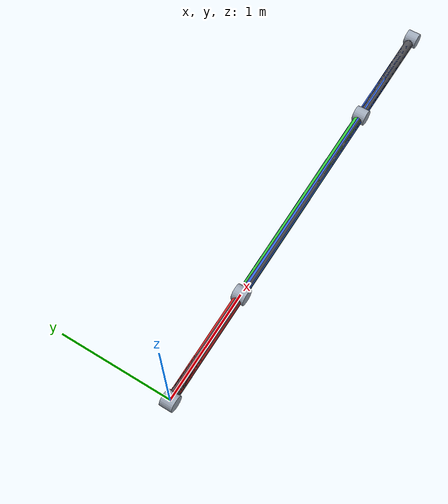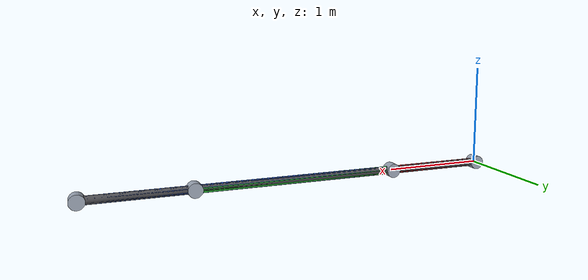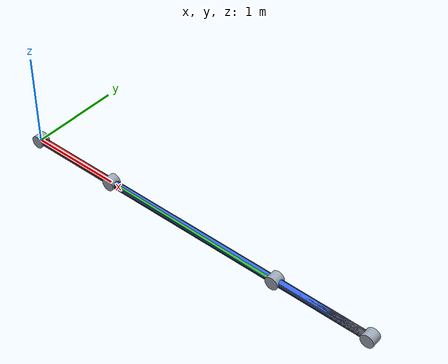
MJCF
<mujoco model="four_bar_linkage">

  <option gravity="0 0 -9.81" integrator="RK4" timestep="0.001"/>

  <visual>
    <headlight diffuse="0.55 0.55 0.55" ambient="0.30 0.30 0.30" specular="0.10 0.10 0.10"/>
    <global offwidth="1280" offheight="720"/>
  </visual>

  <asset>
    <!-- DC Engineer shield logo — static backdrop -->
    <texture name="shield_tex" type="2d" file="../images/dc-engineer-logo-transparent.png"/>
    <material name="logo_mat"     texture="shield_tex" texrepeat="1 1" rgba="1 1 1 1"/>

    <material name="ground_mat"   rgba="0.30 0.30 0.32 1.00"/>
    <material name="crank_mat"    rgba="0.88 0.16 0.16 1.00" reflectance="0.20" shininess="0.60"/>
    <material name="coupler_mat"  rgba="0.20 0.78 0.24 1.00" reflectance="0.20" shininess="0.60"/>
    <material name="follower_mat" rgba="0.20 0.40 0.92 1.00" reflectance="0.20" shininess="0.60"/>
    <material name="pin_mat"      rgba="0.62 0.66 0.72 1.00" reflectance="0.60" shininess="1.00"/>
  </asset>

  <worldbody>

    <!-- DC Engineer shield logo — static backdrop, faces camera at azimuth 180 -->
    <body name="backdrop" pos="2 0.3 1.0">
      <geom name="logo_panel" type="plane" size="2.2 2.2 0.1"
            pos="0 0 0" euler="90 180 0"
            material="logo_mat" rgba="0 0 0 0" contype="0" conaffinity="0"/>
    </body>

    <!-- Fixed ground link from crank pivot P₀=(0,0,0) to follower pivot P₃=(l₃,0,0) -->
    <geom name="ground_link" type="capsule" fromto="0 0 0  4 0 0"
          size="0.04" material="ground_mat" rgba="0.30 0.30 0.32 1"
          density="0" contype="0" conaffinity="0"/>
    <geom name="pin0" type="cylinder" pos="0 0 0" euler="90 0 0"
          size="0.07 0.055" material="pin_mat" rgba="0.62 0.66 0.72 1"
          density="0" contype="0" conaffinity="0"/>
    <geom name="pin3" type="cylinder" pos="4 0 0" euler="90 0 0"
          size="0.07 0.055" material="pin_mat" rgba="0.62 0.66 0.72 1"
          density="0" contype="0" conaffinity="0"/>

    <!-- Crank (l₀ = 1 m, m₀ = 1 kg). Pivot at P₀; link extends along +x at θ₀ = 0.
         Rotates about the −y axis so positive angles sweep toward +z (upward). -->
    <body name="crank" pos="0 0 0">
      <joint name="j0" type="hinge" axis="0 -1 0"/>
      <inertial pos="0.5 0 0" mass="1" diaginertia="0.001 0.0833 0.0833"/>
      <geom name="crank_link" type="capsule" fromto="0 0 0  1 0 0"
            size="0.04" material="crank_mat" rgba="0.88 0.16 0.16 1"
            density="0" contype="0" conaffinity="0"/>
      <geom name="pin1" type="cylinder" pos="1 0 0" euler="90 0 0"
            size="0.07 0.055" material="pin_mat" rgba="0.62 0.66 0.72 1"
            density="0" contype="0" conaffinity="0"/>

      <!-- Coupler (l₁ = 2 m, m₁ = 2 kg). Pivot at crank tip P₁; link extends along +x.
           Joint angle is relative to the crank body frame. -->
      <body name="coupler" pos="1 0 0">
        <joint name="j1" type="hinge" axis="0 -1 0"/>
        <inertial pos="1 0 0" mass="2" diaginertia="0.001 0.6667 0.6667"/>
        <geom name="coupler_link" type="capsule" fromto="0 0 0  2 0 0"
              size="0.04" material="coupler_mat" rgba="0.20 0.78 0.24 1"
              density="0" contype="0" conaffinity="0"/>
        <geom name="pin2" type="cylinder" pos="2 0 0" euler="90 0 0"
              size="0.07 0.055" material="pin_mat" rgba="0.62 0.66 0.72 1"
              density="0" contype="0" conaffinity="0"/>
        <site name="coupler_tip" pos="2 0 0"/>
      </body>
    </body>

    <body name="follower" pos="4 0 0">
      <joint name="j2" type="hinge" axis="0 1 0"/>
      <inertial pos="-1.5 0 0" mass="3" diaginertia="0.001 2.25 2.25"/>
      <geom name="follower_link" type="capsule" fromto="0 0 0  -3 0 0"
            size="0.04" material="follower_mat" rgba="0.20 0.40 0.92 1"
            density="0" contype="0" conaffinity="0"/>
      <site name="follower_tip" pos="-3 0 0"/>
    </body>

  </worldbody>

  <!-- Close the four-bar loop: coupler tip and follower tip must coincide. -->
  <equality>
    <connect site1="coupler_tip" site2="follower_tip"/>
  </equality>

</mujoco>
